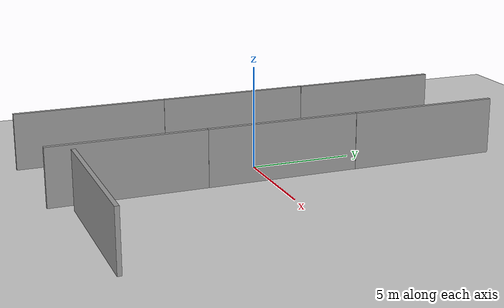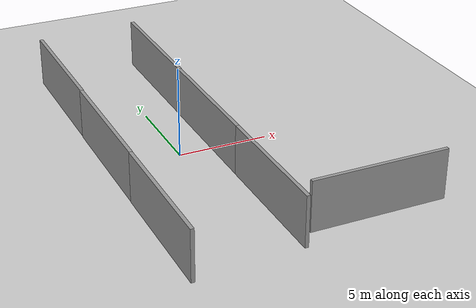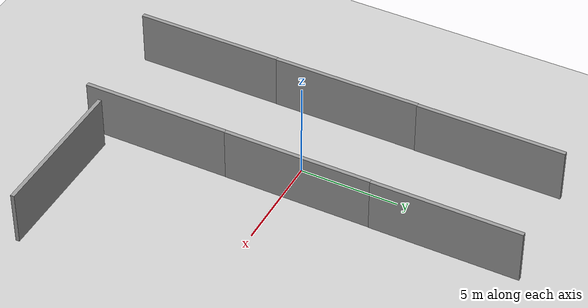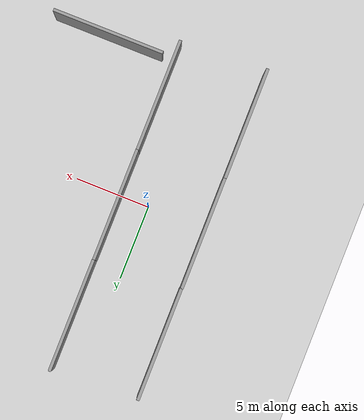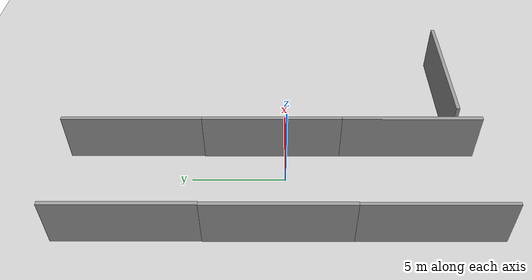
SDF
<sdf version="1.7">
 <world name="default">
  <light name="sun" type="directional">
   <pose>0 0 10 0 -0 0</pose>
   <diffuse>0.8 0.8 0.8 1</diffuse>
   <specular>0.2 0.2 0.2 1</specular>
   <attenuation>
    <range>1000</range>
    <constant>0.9</constant>
    <linear>0.01</linear>
    <quadratic>0.001</quadratic>
   </attenuation>
   <direction>-0.5 0.1 -0.9</direction>
   <spot><inner_angle>0</inner_angle><outer_angle>0</outer_angle><falloff>0</falloff></spot>
  </light>
  <model name="ground_plane">
   <static>1</static>
   <link name="link">
    <collision name="collision">
     <geometry><plane><normal>0 0 1</normal><size>100 100</size></plane></geometry>
     <surface>
      <contact><collide_bitmask>65535</collide_bitmask></contact>
      <friction><ode><mu>100</mu><mu2>50</mu2></ode></friction>
     </surface>
    </collision>
    <visual name="visual">
     <cast_shadows>0</cast_shadows>
     <geometry><plane><normal>0 0 1</normal><size>100 100</size></plane></geometry>
     <material>
      <script><uri>file://media/materials/scripts/gazebo.material</uri><name>Gazebo/Grey</name></script>
     </material>
    </visual>
   </link>
  </model>
  <gravity>0 0 -9.8</gravity>
  <magnetic_field>6e-06 2.3e-05 -4.2e-05</magnetic_field>
  <atmosphere type="adiabatic"/>
  <physics type="ode">
   <max_step_size>0.001</max_step_size>
   <real_time_factor>1</real_time_factor>
   <real_time_update_rate>1000</real_time_update_rate>
  </physics>
  <scene><ambient>0.4 0.4 0.4 1</ambient><background>0.7 0.7 0.7 1</background><shadows>1</shadows></scene>
  <spherical_coordinates>
   <surface_model>EARTH_WGS84</surface_model>
   <latitude_deg>0</latitude_deg>
   <longitude_deg>0</longitude_deg>
   <elevation>0</elevation>
   <heading_deg>0</heading_deg>
  </spherical_coordinates>
  <model name="grey_wall">
   <static>1</static>
   <link name="link">
    <pose>0 0 1.4 0 -0 0</pose>
    <collision name="collision"><geometry><box><size>7.5 0.2 2.8</size></box></geometry></collision>
    <visual name="visual">
     <cast_shadows>0</cast_shadows>
     <geometry><box><size>7.5 0.2 2.8</size></box></geometry>
     <material>
      <script>
       <uri>model://grey_wall/materials/scripts</uri>
       <uri>model://grey_wall/materials/textures</uri>
       <name>vrc/grey_wall</name>
      </script>
     </material>
    </visual>
   </link>
   <pose>6.46145 -9.35606 0 0 -0 0</pose>
  </model>
  <model name="grey_wall_clone">
   <static>1</static>
   <link name="link">
    <pose>0 0 1.4 0 -0 0</pose>
    <collision name="collision"><geometry><box><size>7.5 0.2 2.8</size></box></geometry></collision>
    <visual name="visual">
     <cast_shadows>0</cast_shadows>
     <geometry><box><size>7.5 0.2 2.8</size></box></geometry>
     <material>
      <script>
       <uri>model://grey_wall/materials/scripts</uri>
       <uri>model://grey_wall/materials/textures</uri>
       <name>vrc/grey_wall</name>
      </script>
     </material>
    </visual>
   </link>
   <pose>-3.90621 0.391683 0 0 0 -1.56673</pose>
  </model>
  <model name="grey_wall_clone_clone">
   <static>1</static>
   <link name="link">
    <pose>0 0 1.4 0 -0 0</pose>
    <collision name="collision"><geometry><box><size>7.5 0.2 2.8</size></box></geometry></collision>
    <visual name="visual">
     <cast_shadows>0</cast_shadows>
     <geometry><box><size>7.5 0.2 2.8</size></box></geometry>
     <material>
      <script>
       <uri>model://grey_wall/materials/scripts</uri>
       <uri>model://grey_wall/materials/textures</uri>
       <name>vrc/grey_wall</name>
      </script>
     </material>
    </visual>
   </link>
   <pose>-3.91208 7.87724 0 0 0 -1.56673</pose>
  </model>
  <model name="grey_wall_clone_clone_0">
   <static>1</static>
   <link name="link">
    <pose>0 0 1.4 0 -0 0</pose>
    <collision name="collision"><geometry><box><size>7.5 0.2 2.8</size></box></geometry></collision>
    <visual name="visual">
     <cast_shadows>0</cast_shadows>
     <geometry><box><size>7.5 0.2 2.8</size></box></geometry>
     <material>
      <script>
       <uri>model://grey_wall/materials/scripts</uri>
       <uri>model://grey_wall/materials/textures</uri>
       <name>vrc/grey_wall</name>
      </script>
     </material>
    </visual>
   </link>
   <pose>-3.89063 -7.10587 0 0 0 -1.56673</pose>
  </model>
  <model name="grey_wall_clone_clone_1">
   <static>1</static>
   <link name="link">
    <pose>0 0 1.4 0 -0 0</pose>
    <collision name="collision"><geometry><box><size>7.5 0.2 2.8</size></box></geometry></collision>
    <visual name="visual">
     <cast_shadows>0</cast_shadows>
     <geometry><box><size>7.5 0.2 2.8</size></box></geometry>
     <material>
      <script>
       <uri>model://grey_wall/materials/scripts</uri>
       <uri>model://grey_wall/materials/textures</uri>
       <name>vrc/grey_wall</name>
      </script>
     </material>
    </visual>
   </link>
   <pose>1.94376 -6.7574 0 0 0 -1.56673</pose>
  </model>
  <model name="grey_wall_clone_clone_2">
   <static>1</static>
   <link name="link">
    <pose>0 0 1.4 0 -0 0</pose>
    <collision name="collision"><geometry><box><size>7.5 0.2 2.8</size></box></geometry></collision>
    <visual name="visual">
     <cast_shadows>0</cast_shadows>
     <geometry><box><size>7.5 0.2 2.8</size></box></geometry>
     <material>
      <script>
       <uri>model://grey_wall/materials/scripts</uri>
       <uri>model://grey_wall/materials/textures</uri>
       <name>vrc/grey_wall</name>
      </script>
     </material>
    </visual>
   </link>
   <pose>1.9203 0.736361 0 0 0 -1.56673</pose>
  </model>
  <model name="grey_wall_clone_clone_3">
   <static>1</static>
   <link name="link">
    <pose>0 0 1.4 0 -0 0</pose>
    <collision name="collision"><geometry><box><size>7.5 0.2 2.8</size></box></geometry></collision>
    <visual name="visual">
     <cast_shadows>0</cast_shadows>
     <geometry><box><size>7.5 0.2 2.8</size></box></geometry>
     <material>
      <script>
       <uri>model://grey_wall/materials/scripts</uri>
       <uri>model://grey_wall/materials/textures</uri>
       <name>vrc/grey_wall</name>
      </script>
     </material>
    </visual>
   </link>
   <pose>1.90721 8.2378 0 0 0 -1.56673</pose>
  </model>
 </world>
</sdf>
